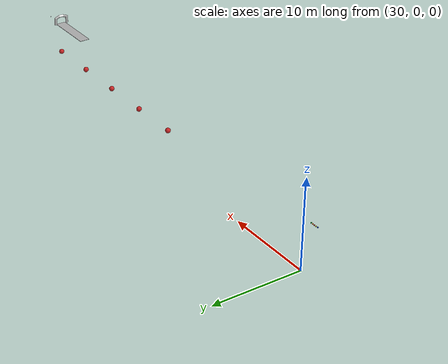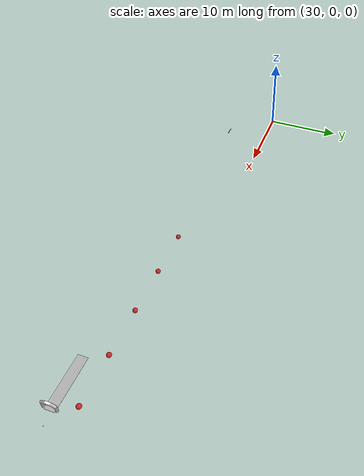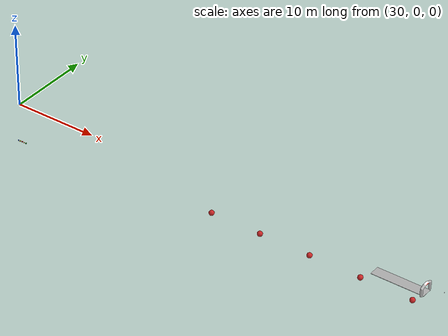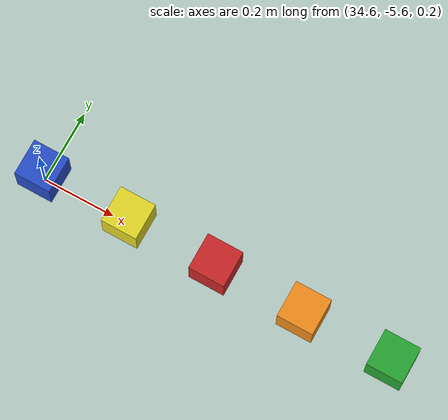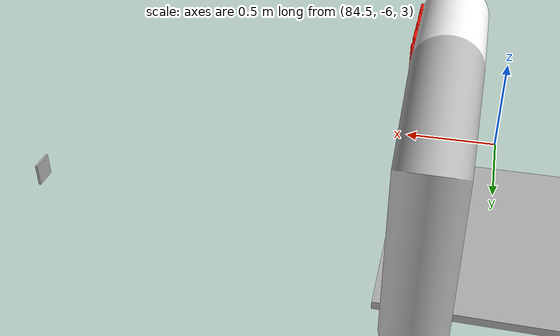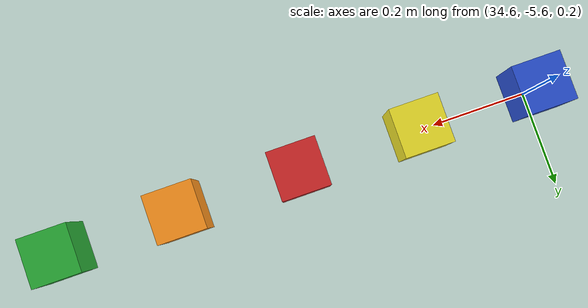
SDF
<sdf version="1.9">
 <world name="course_A">
  <physics name="4ms" type="ignore">
   <max_step_size>0.004</max_step_size>
   <real_time_update_rate>250</real_time_update_rate>
  </physics>
  <spherical_coordinates>
   <surface_model>EARTH_WGS84</surface_model>
   <latitude_deg>47.3977</latitude_deg>
   <longitude_deg>8.5456</longitude_deg>
   <elevation>0</elevation>
   <heading_deg>0</heading_deg>
  </spherical_coordinates>
  <plugin filename="gz-sim-physics-system" name="gz::sim::systems::Physics"/>
  <plugin filename="gz-sim-sensors-system" name="gz::sim::systems::Sensors">
   <render_engine>ogre2</render_engine>
  </plugin>
  <plugin filename="gz-sim-user-commands-system" name="gz::sim::systems::UserCommands"/>
  <plugin filename="gz-sim-scene-broadcaster-system" name="gz::sim::systems::SceneBroadcaster"/>
  <scene>
   <sky><clouds><speed>3</speed></clouds></sky>
   <ambient>0.45 0.45 0.45 1</ambient>
   <background>0.65 0.65 0.65 1</background>
   <shadows>false</shadows>
  </scene>
  <include><name>ground1</name><pose>0 0 0.075 0 0 0</pose><uri>model://khnp_ground_plane</uri></include>
  <include>
   <name>b1</name>
   <pose>34.6 -5.6 0.28 0 0 0</pose>
   <uri>model://box_manipulation,2,false_blue</uri>
  </include>
  <include>
   <name>b2</name>
   <pose>34.85 -5.6 0.28 0 0 0</pose>
   <uri>model://box_manipulation_2_true_yellow</uri>
  </include>
  <include>
   <name>b3</name>
   <pose>35.1 -5.6 0.28 0 0 0</pose>
   <uri>model://box_manipulation_2_false_red</uri>
  </include>
  <include>
   <name>b4</name>
   <pose>35.35 -5.6 0.28 0 0 0</pose>
   <uri>model://box_manipulation_2_false_orange</uri>
  </include>
  <include>
   <name>b5</name>
   <pose>35.6 -5.6 0.28 0 0 0</pose>
   <uri>model://box_manipulation_2_false_green</uri>
  </include>
  <include><name>ground2</name><pose>75.75 -6 0.055 0 0 0</pose><uri>model://khnp_ground_plane</uri></include>
  <include><name>ds1</name><pose>58.75 -4 0.3 0 0 0</pose><uri>model://disturbance_sphere</uri></include>
  <include><name>ds2</name><pose>64.75 -4 0.3 0 0 0</pose><uri>model://disturbance_sphere</uri></include>
  <include><name>ds3</name><pose>70.75 -4 0.3 0 0 0</pose><uri>model://disturbance_sphere</uri></include>
  <include><name>ds4</name><pose>76.75 -4 0.3 0 0 0</pose><uri>model://disturbance_sphere</uri></include>
  <include><name>ds5</name><pose>82.75 -4 0.3 0 0 0</pose><uri>model://disturbance_sphere</uri></include>
  <include><name>finish_floor</name><pose>82 -5.2 2.968 0 0 0</pose><uri>model://floor_6m2</uri></include>
  <include><pose>84.8 -5.2 2.968 0 0 3.141592</pose><uri>model://last_finish</uri></include>
  <include><pose>86.55 -4.68 3.388 0 1.5708 0</pose><uri>model://finish_0_false</uri></include>
 </world>
</sdf>

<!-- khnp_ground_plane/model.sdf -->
<sdf version="1.5">
  <model name="khnp_ground_plane">
    <static>true</static>
    <link name="link">
      <pose>0 0 -0.1 0 0 0</pose>
      <collision name="collision">
        <geometry>
          <box>
            <size>40.0 40.0 0.1</size>
          </box>
        </geometry>
      </collision>
    </link>
  </model>
</sdf>

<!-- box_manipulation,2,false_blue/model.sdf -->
<sdf version='1.6'>
  <model name='box_manipulation,2,false_blue'>
    <link name='coll'>
      <inertial>
        <mass>0.3</mass>
        <inertia> <!-- inertias are tricky to compute -->
          <!-- http://gazebosim.org/tutorials?tut=inertia&cat=build_robot -->
          <ixx>0.00083</ixx>       <!-- for a box: ixx = 0.083 * mass * (y*y + z*z) -->
          <ixy>0.0</ixy>         <!-- for a box: ixy = 0 -->
          <ixz>0.0</ixz>         <!-- for a box: ixz = 0 -->
          <iyy>0.00083</iyy>       <!-- for a box: iyy = 0.083 * mass * (x*x + z*z) -->
          <iyz>0.0</iyz>         <!-- for a box: iyz = 0 -->
          <izz>0.00083</izz>       <!-- for a box: izz = 0.083 * mass * (x*x + y*y) -->
        </inertia>
      </inertial>
      <collision name='box_manipulation,2,false_blue_c'>
        <geometry>
          <box>
            <size>0.1 0.1 0.1</size>
          </box>
        </geometry>
        <surface>
          <friction>
            <torsional>
              <coefficient>1000</coefficient>
            </torsional>
            <ode>
              <mu>100</mu>
              <mu2>100</mu2>
            </ode>
          </friction>
          <contact>
            <ode>
              <kp>1000000000</kp>
              <kd>100000000</kd>
              <min_depth>0.003</min_depth>
              <max_vel>0.0</max_vel>
            </ode>
          </contact>
        </surface>
      </collision>
      <visual name='box_manipulation,2,false_blue_v'>
        <geometry>
          <box>
            <size>0.1 0.1 0.1</size>
          </box>
        </geometry>
        <material>
          <script>
            <uri>model://box_manipulation,2,false_blue/materials/scripts</uri>
            <uri>model://box_manipulation,2,false_blue/materials/textures</uri>
            <name>vrc/box_manipulation,2,false_blue</name>
          </script>
        </material>
      </visual>
    </link>
  </model>
</sdf>

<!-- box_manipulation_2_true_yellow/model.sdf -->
<sdf version='1.6'>
  <model name='box_manipulation_2_true_yellow'>
    <link name='box_manipulation_2_true_yellow'>
      <inertial>
        <mass>0.3</mass>
        <inertia> <!-- inertias are tricky to compute -->
          <!-- http://gazebosim.org/tutorials?tut=inertia&cat=build_robot -->
          <ixx>0.00083</ixx>       <!-- for a box: ixx = 0.083 * mass * (y*y + z*z) -->
          <ixy>0.0</ixy>         <!-- for a box: ixy = 0 -->
          <ixz>0.0</ixz>         <!-- for a box: ixz = 0 -->
          <iyy>0.00083</iyy>       <!-- for a box: iyy = 0.083 * mass * (x*x + z*z) -->
          <iyz>0.0</iyz>         <!-- for a box: iyz = 0 -->
          <izz>0.00083</izz>       <!-- for a box: izz = 0.083 * mass * (x*x + y*y) -->
        </inertia>
      </inertial>
      <collision name='box_manipulation_2_true_yellow_c'>
        <geometry>
          <box>
            <size>0.1 0.1 0.1</size>
          </box>
        </geometry>
        <surface>
          <friction>
            <torsional>
              <coefficient>1000</coefficient>
            </torsional>
            <ode>
              <mu>100</mu>
              <mu2>100</mu2>
            </ode>
          </friction>
          <contact>
            <ode>
              <kp>1000000000</kp>
              <kd>100000000</kd>
              <min_depth>0.003</min_depth>
              <max_vel>0.0</max_vel>
            </ode>
          </contact>
        </surface>
      </collision>
      <visual name='box_manipulation_2_true_yellow_v'>
        <geometry>
          <box>
            <size>0.1 0.1 0.1</size>
          </box>
        </geometry>
        <material>
          <script>
            <uri>model://box_manipulation_2_true_yellow/materials/scripts</uri>
            <uri>model://box_manipulation_2_true_yellow/materials/textures</uri>
            <name>vrc/box_manipulation_2_true_yellow</name>
          </script>
        </material>
      </visual>
    </link>
  </model>
</sdf>

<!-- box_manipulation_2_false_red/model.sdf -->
<sdf version='1.6'>
  <model name='box_manipulation_2_false_red'>
    <link name='box_manipulation_2_false_red'>
      <inertial>
        <mass>0.3</mass>
        <inertia> <!-- inertias are tricky to compute -->
          <!-- http://gazebosim.org/tutorials?tut=inertia&cat=build_robot -->
          <ixx>0.00083</ixx>       <!-- for a box: ixx = 0.083 * mass * (y*y + z*z) -->
          <ixy>0.0</ixy>         <!-- for a box: ixy = 0 -->
          <ixz>0.0</ixz>         <!-- for a box: ixz = 0 -->
          <iyy>0.00083</iyy>       <!-- for a box: iyy = 0.083 * mass * (x*x + z*z) -->
          <iyz>0.0</iyz>         <!-- for a box: iyz = 0 -->
          <izz>0.00083</izz>       <!-- for a box: izz = 0.083 * mass * (x*x + y*y) -->
        </inertia>
      </inertial>
      <collision name='box_manipulation_2_false_red_c'>
        <geometry>
          <box>
            <size>0.1 0.1 0.1</size>
          </box>
        </geometry>
        <surface>
          <friction>
            <torsional>
              <coefficient>1000</coefficient>
            </torsional>
            <ode>
              <mu>100</mu>
              <mu2>100</mu2>
            </ode>
          </friction>
          <contact>
            <ode>
              <kp>1000000000</kp>
              <kd>100000000</kd>
              <min_depth>0.003</min_depth>
              <max_vel>0.0</max_vel>
            </ode>
          </contact>
        </surface>
      </collision>
      <visual name='box_manipulation_2_false_red_v'>
        <geometry>
          <box>
            <size>0.1 0.1 0.1</size>
          </box>
        </geometry>
        <material>
          <script>
            <uri>model://box_manipulation_2_false_red/materials/scripts</uri>
            <uri>model://box_manipulation_2_false_red/materials/textures</uri>
            <name>vrc/box_manipulation_2_false_red</name>
          </script>
        </material>
      </visual>
    </link>
  </model>
</sdf>

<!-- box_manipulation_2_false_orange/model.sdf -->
<sdf version='1.6'>
  <model name='box_manipulation_2_false_orange'>
    <link name='box_manipulation_2_false_orange'>
      <inertial>
        <mass>0.3</mass>
        <inertia> <!-- inertias are tricky to compute -->
          <!-- http://gazebosim.org/tutorials?tut=inertia&cat=build_robot -->
          <ixx>0.00083</ixx>       <!-- for a box: ixx = 0.083 * mass * (y*y + z*z) -->
          <ixy>0.0</ixy>         <!-- for a box: ixy = 0 -->
          <ixz>0.0</ixz>         <!-- for a box: ixz = 0 -->
          <iyy>0.00083</iyy>       <!-- for a box: iyy = 0.083 * mass * (x*x + z*z) -->
          <iyz>0.0</iyz>         <!-- for a box: iyz = 0 -->
          <izz>0.00083</izz>       <!-- for a box: izz = 0.083 * mass * (x*x + y*y) -->
        </inertia>
      </inertial>
      <collision name='box_manipulation_2_false_orange_c'>
        <geometry>
          <box>
            <size>0.1 0.1 0.1</size>
          </box>
        </geometry>
        <surface>
          <friction>
            <torsional>
              <coefficient>1000</coefficient>
            </torsional>
            <ode>
              <mu>100</mu>
              <mu2>100</mu2>
            </ode>
          </friction>
          <contact>
            <ode>
              <kp>1000000000</kp>
              <kd>100000000</kd>
              <min_depth>0.003</min_depth>
              <max_vel>0.0</max_vel>
            </ode>
          </contact>
        </surface>
      </collision>
      <visual name='box_manipulation_2_false_orange_v'>
        <geometry>
          <box>
            <size>0.1 0.1 0.1</size>
          </box>
        </geometry>
        <material>
          <script>
            <uri>model://box_manipulation_2_false_orange/materials/scripts</uri>
            <uri>model://box_manipulation_2_false_orange/materials/textures</uri>
            <name>vrc/box_manipulation_2_false_orange</name>
          </script>
        </material>
      </visual>
    </link>
  </model>
</sdf>

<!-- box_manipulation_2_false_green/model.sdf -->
<sdf version='1.6'>
  <model name='box_manipulation_2_false_green'>
    <link name='box_manipulation_2_false_green'>
      <inertial>
        <mass>0.3</mass>
        <inertia> <!-- inertias are tricky to compute -->
          <!-- http://gazebosim.org/tutorials?tut=inertia&cat=build_robot -->
          <ixx>0.00083</ixx>       <!-- for a box: ixx = 0.083 * mass * (y*y + z*z) -->
          <ixy>0.0</ixy>         <!-- for a box: ixy = 0 -->
          <ixz>0.0</ixz>         <!-- for a box: ixz = 0 -->
          <iyy>0.00083</iyy>       <!-- for a box: iyy = 0.083 * mass * (x*x + z*z) -->
          <iyz>0.0</iyz>         <!-- for a box: iyz = 0 -->
          <izz>0.00083</izz>       <!-- for a box: izz = 0.083 * mass * (x*x + y*y) -->
        </inertia>
      </inertial>
      <collision name='box_manipulation_2_false_green_c'>
        <geometry>
          <box>
            <size>0.1 0.1 0.1</size>
          </box>
        </geometry>
        <surface>
          <friction>
            <torsional>
              <coefficient>1000</coefficient>
            </torsional>
            <ode>
              <mu>100</mu>
              <mu2>100</mu2>
            </ode>
          </friction>
          <contact>
            <ode>
              <kp>1000000000</kp>
              <kd>100000000</kd>
              <min_depth>0.003</min_depth>
              <max_vel>0.0</max_vel>
            </ode>
          </contact>
        </surface>
      </collision>
      <visual name='box_manipulation_2_false_green_v'>
        <geometry>
          <box>
            <size>0.1 0.1 0.1</size>
          </box>
        </geometry>
        <surface>
            <friction>
                <ode>
                    <mu>100</mu>
                    <mu2>100</mu2>
                </ode>
            </friction>
        </surface>
        <material>
          <script>
            <uri>model://box_manipulation_2_false_green/materials/scripts</uri>
            <uri>model://box_manipulation_2_false_green/materials/textures</uri>
            <name>vrc/box_manipulation_2_false_green</name>
          </script>
        </material>
      </visual>
    </link>
  </model>
</sdf>

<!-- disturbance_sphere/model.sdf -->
<sdf version="1.5">
  <model name="disturbance_sphere">
    <static>false</static>
    <self_collide>true</self_collide>
    <link name="link">
      <inertial>
        <mass>10.0</mass>
          <inertia>
            <ixx>1.44</ixx>
            <ixy>0.0</ixy>
            <ixz>0.0</ixz>
            <iyy>1.44</iyy>
            <iyz>0.0</iyz>
            <izz>1.44</izz>
          </inertia>
      </inertial>
      <collision name="ccc">
        <geometry>
          <sphere>
            <radius>0.3</radius>
          </sphere>
        </geometry>
      </collision>
      <visual name="vvv">
        <cast_shadows>false</cast_shadows>
        <geometry>
          <sphere>
            <radius>0.3</radius>
          </sphere>
        </geometry>
        <material>
          <script>
            <name>Gazebo/Red</name>
            <uri>file://media/materials/scripts/gazebo.material</uri>
          </script>
        </material>
      </visual>
    </link>
  </model>
</sdf>

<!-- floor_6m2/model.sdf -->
<sdf version="1.5">
  <model name="floor_6m2">
    <static>true</static>
    <link name="link">
      <pose>0 0 -0.02 0 0 0</pose>
      <collision name="collision">
        <geometry>
          <box>
            <size>6.0 1.2 0.04</size>
          </box>
        </geometry>
      </collision>
      <visual name="visual">
        <geometry>
          <box>
            <size>6.0 1.2 0.04</size>
          </box>
        </geometry>
        <material>
          <script>
            <uri>model://floor_6m2/materials/scripts</uri>
            <uri>model://floor_6m2/materials/textures</uri>
            <name>vrc/floor_6m2</name>
          </script>
        </material>
      </visual>
    </link>
  </model>
</sdf>

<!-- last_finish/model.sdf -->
<sdf version='1.5'>
<model name='last_finish'>
<static>true</static>
<link name="link">
   <pose frame=''>0 0 0.01 0 0 0</pose>
  <visual name='last_finishV'>
    <cast_shadows>false</cast_shadows>
    <geometry>
      <mesh>
        <scale>1.0 1.0 1.0</scale>
        <uri>model://last_finish/last_finish2.dae</uri>
      </mesh>
    </geometry>
    <material>
      <script>
        <name>last_finish</name>
        <uri>model://last_finish/last_finish2.dae</uri>
      </script>
    </material>
  </visual>
</link>
</model>
</sdf>

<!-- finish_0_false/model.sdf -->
<sdf version="1.5">
  <model name="finish_0_false">
    <static>true</static>
    <link name="link">
      <pose>0 0 0 0 0 0</pose>
      <collision name="collision">
        <geometry>
          <box>
            <size>0.1 0.1 0.01</size>
          </box>
        </geometry>
      </collision>
      <visual name="visual">
        <cast_shadows>false</cast_shadows>
        <geometry>
          <box>
            <size>0.1 0.1 0.01</size>
          </box>
        </geometry>
        <material>
          <script>
            <uri>model://finish_0_false/materials/scripts</uri>
            <uri>model://finish_0_false/materials/textures</uri>
            <name>vrc/finish_0_false</name>
          </script>
        </material>
      </visual>
    </link>
  </model>
</sdf>
